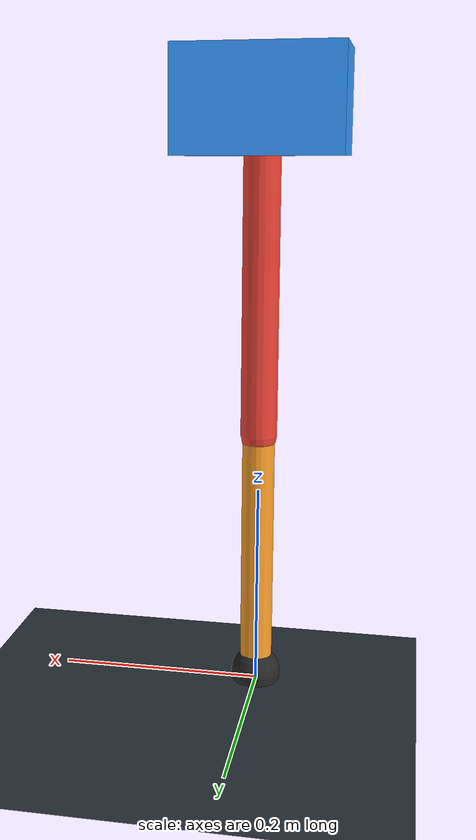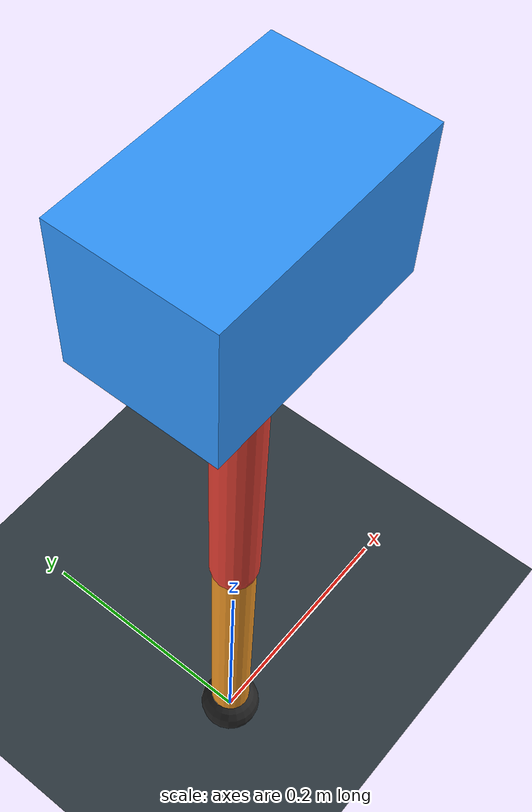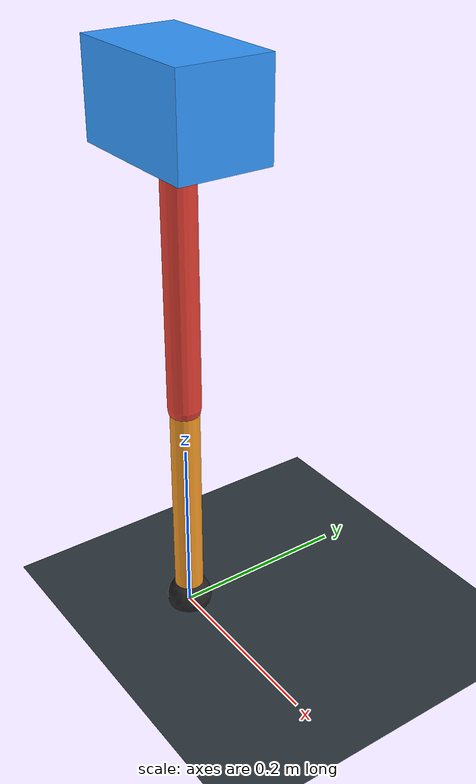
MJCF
<mujoco model="single_axis_two_bar">
  <compiler angle="radian" inertiafromgeom="true"/>
  <option timestep="0.001" integrator="implicitfast" gravity="0 0 -9.81"/>
  <default>
    <joint damping="0.08"/>
    <geom friction="1.2 0.01 0.0001" condim="3"/>
  </default>
  <worldbody>
    <geom name="floor" type="plane" size="5 5 0.1" rgba="0.18 0.22 0.25 1"/>
    <body name="carriage" pos="0 0 0.5758798650115321">
      <joint name="pole_slide" type="slide" axis="0 0 1"/>
      <geom name="payload" type="box" size="0.08 0.05 0.05" mass="3.10094438796678" rgba="0.2 0.6 1 1"/>
      <body name="thigh" pos="0 0 0">
        <joint name="hip" type="hinge" axis="0 1 0"/>
        <geom name="thigh_link" type="capsule" fromto="0 0 0 0 0 -0.31961862596353846" size="0.018" mass="0.22773249438654067" rgba="0.9 0.25 0.2 1"/>
        <body name="shank" pos="0 0 -0.31961862596353846">
          <joint name="knee" type="hinge" axis="0 1 0"/>
          <geom name="shank_link" type="capsule" fromto="0 0 0 0 0 -0.24829876064628847" size="0.016" mass="0.1769161479391271" rgba="0.95 0.6 0.15 1"/>
          <geom name="foot" type="sphere" pos="0 0 -0.24829876064628847" size="0.025" mass="0.03" rgba="0.15 0.15 0.15 1"/>
          <site name="toe" pos="0 0 -0.24829876064628847" size="0.008"/>
        </body>
      </body>
    </body>
  </worldbody>
  <actuator>
    <motor name="hip_motor" joint="hip" ctrlrange="-37.7498374269139 37.7498374269139"/>
    <motor name="knee_motor" joint="knee" ctrlrange="-75.16066107521503 75.16066107521503"/>
  </actuator>
</mujoco>
